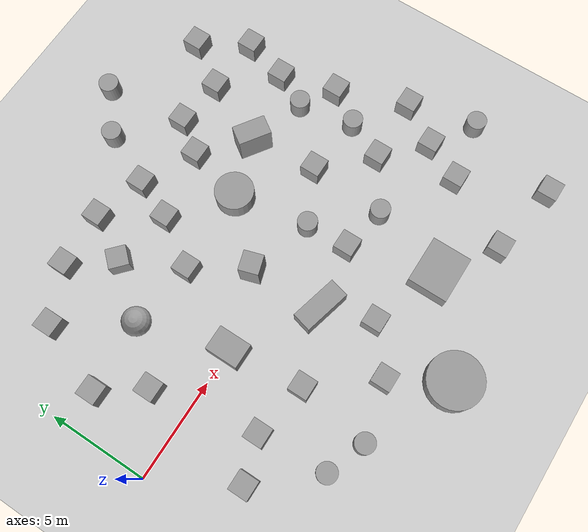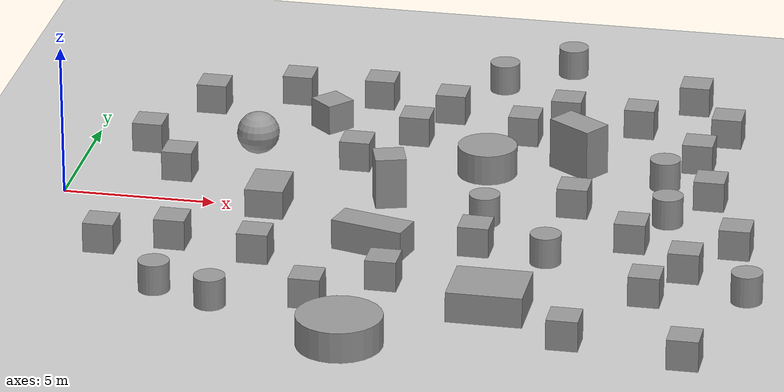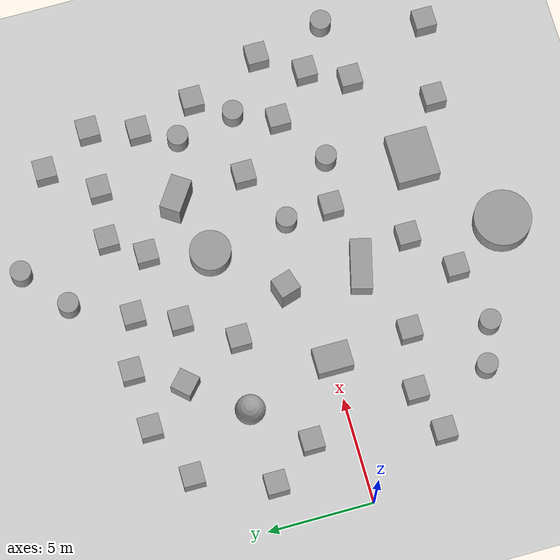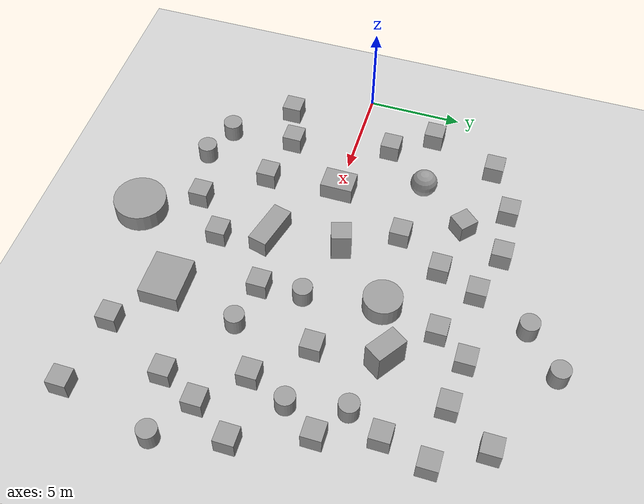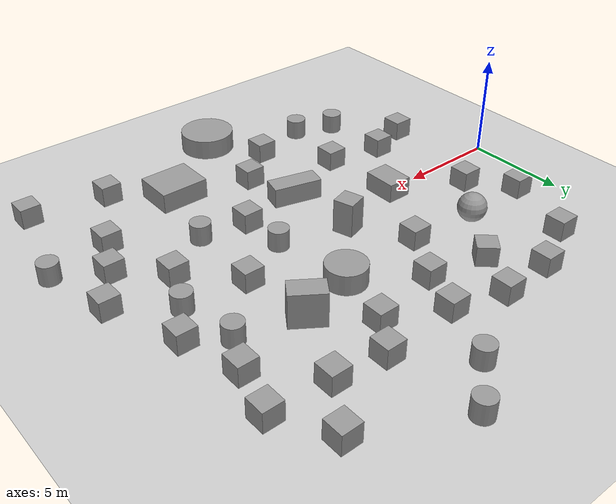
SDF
<sdf version="1.7">
 <world name="default">
  <light name="sun" type="directional">
   <pose>0 0 10 0 -0 0</pose>
   <diffuse>0.8 0.8 0.8 1</diffuse>
   <specular>0.2 0.2 0.2 1</specular>
   <attenuation>
    <range>1000</range>
    <constant>0.9</constant>
    <linear>0.01</linear>
    <quadratic>0.001</quadratic>
   </attenuation>
   <direction>-0.5 0.1 -0.9</direction>
   <spot><inner_angle>0</inner_angle><outer_angle>0</outer_angle><falloff>0</falloff></spot>
  </light>
  <model name="ground_plane">
   <static>1</static>
   <link name="link">
    <collision name="collision">
     <geometry><plane><normal>0 0 1</normal><size>100 100</size></plane></geometry>
     <surface><friction><ode><mu>100</mu><mu2>50</mu2></ode></friction></surface>
    </collision>
    <visual name="visual">
     <cast_shadows>0</cast_shadows>
     <geometry><plane><normal>0 0 1</normal><size>100 100</size></plane></geometry>
     <material>
      <script><uri>file://media/materials/scripts/gazebo.material</uri><name>Gazebo/Grey</name></script>
     </material>
    </visual>
   </link>
  </model>
  <gravity>0 0 -9.8</gravity>
  <magnetic_field>6e-06 2.3e-05 -4.2e-05</magnetic_field>
  <atmosphere type="adiabatic"/>
  <physics type="ode">
   <max_step_size>0.001</max_step_size>
   <real_time_factor>1</real_time_factor>
   <real_time_update_rate>1000</real_time_update_rate>
  </physics>
  <scene><ambient>0.4 0.4 0.4 1</ambient><background>0.7 0.7 0.7 1</background><shadows>1</shadows></scene>
  <spherical_coordinates>
   <surface_model>EARTH_WGS84</surface_model>
   <latitude_deg>0</latitude_deg>
   <longitude_deg>0</longitude_deg>
   <elevation>0</elevation>
   <heading_deg>0</heading_deg>
  </spherical_coordinates>
  <model name="unit_box">
   <pose>6.8234 -0.00563 0.4785 0 -0 0</pose>
   <link name="link">
    <inertial>
     <mass>1</mass>
     <inertia>
      <ixx>0.166667</ixx>
      <ixy>0</ixy>
      <ixz>0</ixz>
      <iyy>0.166667</iyy>
      <iyz>0</iyz>
      <izz>0.166667</izz>
     </inertia>
    </inertial>
    <collision name="collision"><geometry><box><size>1.25115 1.68193 0.956999</size></box></geometry></collision>
    <visual name="visual">
     <geometry><box><size>1.25115 1.68193 0.956999</size></box></geometry>
     <material>
      <script><name>Gazebo/Grey</name><uri>file://media/materials/scripts/gazebo.material</uri></script>
     </material>
    </visual>
   </link>
  </model>
  <model name="unit_sphere">
   <pose>5.52198 4.27097 0.70451 0 -0 0</pose>
   <link name="link">
    <inertial>
     <mass>1</mass>
     <inertia><ixx>0.1</ixx><ixy>0</ixy><ixz>0</ixz><iyy>0.1</iyy><iyz>0</iyz><izz>0.1</izz></inertia>
    </inertial>
    <collision name="collision"><geometry><sphere><radius>0.70451</radius></sphere></geometry></collision>
    <visual name="visual">
     <geometry><sphere><radius>0.70451</radius></sphere></geometry>
     <material>
      <script><name>Gazebo/Grey</name><uri>file://media/materials/scripts/gazebo.material</uri></script>
     </material>
    </visual>
   </link>
  </model>
  <model name="unit_box_0">
   <pose>2.24802 -3.96061 0.499995 1e-05 -0 0</pose>
   <link name="link">
    <inertial>
     <mass>1</mass>
     <inertia>
      <ixx>0.166667</ixx>
      <ixy>0</ixy>
      <ixz>0</ixz>
      <iyy>0.166667</iyy>
      <iyz>0</iyz>
      <izz>0.166667</izz>
     </inertia>
    </inertial>
    <collision name="collision"><geometry><box><size>1 1 1</size></box></geometry></collision>
    <visual name="visual">
     <geometry><box><size>1 1 1</size></box></geometry>
     <material>
      <script><name>Gazebo/Grey</name><uri>file://media/materials/scripts/gazebo.material</uri></script>
     </material>
    </visual>
   </link>
  </model>
  <model name="unit_box_0_clone">
   <pose>10.5432 1.18116 0.847215 0 -0 0.296647</pose>
   <link name="link">
    <inertial>
     <mass>1</mass>
     <inertia>
      <ixx>0.166667</ixx>
      <ixy>0</ixy>
      <ixz>0</ixz>
      <iyy>0.166667</iyy>
      <iyz>0</iyz>
      <izz>0.166667</izz>
     </inertia>
    </inertial>
    <collision name="collision"><geometry><box><size>1 1 1.69443</size></box></geometry></collision>
    <visual name="visual">
     <geometry><box><size>1 1 1.69443</size></box></geometry>
     <material>
      <script><name>Gazebo/Grey</name><uri>file://media/materials/scripts/gazebo.material</uri></script>
     </material>
    </visual>
   </link>
  </model>
  <model name="unit_box_0_clone_0">
   <pose>10.733 -2.50024 0.5 -0 -0 -0.251296</pose>
   <link name="link">
    <inertial>
     <mass>1</mass>
     <inertia>
      <ixx>0.166667</ixx>
      <ixy>0</ixy>
      <ixz>0</ixz>
      <iyy>0.166667</iyy>
      <iyz>0</iyz>
      <izz>0.166667</izz>
     </inertia>
    </inertial>
    <collision name="collision"><geometry><box><size>2.4261 1 1</size></box></geometry></collision>
    <visual name="visual">
     <geometry><box><size>2.4261 1 1</size></box></geometry>
     <material>
      <script><name>Gazebo/Grey</name><uri>file://media/materials/scripts/gazebo.material</uri></script>
     </material>
    </visual>
   </link>
  </model>
  <model name="unit_box_0_clone_1">
   <pose>7.20218 -3.79292 0.499995 0 1e-05 0</pose>
   <link name="link">
    <inertial>
     <mass>1</mass>
     <inertia>
      <ixx>0.166667</ixx>
      <ixy>0</ixy>
      <ixz>0</ixz>
      <iyy>0.166667</iyy>
      <iyz>0</iyz>
      <izz>0.166667</izz>
     </inertia>
    </inertial>
    <collision name="collision"><geometry><box><size>1 1 1</size></box></geometry></collision>
    <visual name="visual">
     <geometry><box><size>1 1 1</size></box></geometry>
     <material>
      <script><name>Gazebo/Grey</name><uri>file://media/materials/scripts/gazebo.material</uri></script>
     </material>
    </visual>
   </link>
  </model>
  <model name="unit_box_0_clone_2">
   <pose>10.4651 6.22586 0.499995 0 1e-05 0</pose>
   <link name="link">
    <inertial>
     <mass>1</mass>
     <inertia>
      <ixx>0.166667</ixx>
      <ixy>0</ixy>
      <ixz>0</ixz>
      <iyy>0.166667</iyy>
      <iyz>0</iyz>
      <izz>0.166667</izz>
     </inertia>
    </inertial>
    <collision name="collision"><geometry><box><size>1 1 1</size></box></geometry></collision>
    <visual name="visual">
     <geometry><box><size>1 1 1</size></box></geometry>
     <material>
      <script><name>Gazebo/Grey</name><uri>file://media/materials/scripts/gazebo.material</uri></script>
     </material>
    </visual>
   </link>
  </model>
  <model name="unit_cylinder">
   <pose>13.2396 4.04762 0.5 0 -0 0</pose>
   <link name="link">
    <inertial>
     <mass>1</mass>
     <inertia><ixx>0.145833</ixx><ixy>0</ixy><ixz>0</ixz><iyy>0.145833</iyy><iyz>0</iyz><izz>0.125</izz></inertia>
    </inertial>
    <collision name="collision">
     <geometry><cylinder><radius>0.97662</radius><length>1</length></cylinder></geometry>
    </collision>
    <visual name="visual">
     <geometry><cylinder><radius>0.97662</radius><length>1</length></cylinder></geometry>
     <material>
      <script><name>Gazebo/Grey</name><uri>file://media/materials/scripts/gazebo.material</uri></script>
     </material>
    </visual>
   </link>
  </model>
  <model name="unit_cylinder_clone">
   <pose>16.2787 -2.40365 0.499996 2e-06 -0 0</pose>
   <link name="link">
    <inertial>
     <mass>1</mass>
     <inertia><ixx>0.145833</ixx><ixy>0</ixy><ixz>0</ixz><iyy>0.145833</iyy><iyz>0</iyz><izz>0.125</izz></inertia>
    </inertial>
    <collision name="collision">
     <geometry><cylinder><radius>0.5</radius><length>1</length></cylinder></geometry>
    </collision>
    <visual name="visual">
     <geometry><cylinder><radius>0.5</radius><length>1</length></cylinder></geometry>
     <material>
      <script><name>Gazebo/Grey</name><uri>file://media/materials/scripts/gazebo.material</uri></script>
     </material>
    </visual>
   </link>
  </model>
  <model name="unit_cylinder_clone_0">
   <pose>19.6221 1.21871 0.499993 -3e-06 -1e-06 -0</pose>
   <link name="link">
    <inertial>
     <mass>1</mass>
     <inertia><ixx>0.145833</ixx><ixy>0</ixy><ixz>0</ixz><iyy>0.145833</iyy><iyz>0</iyz><izz>0.125</izz></inertia>
    </inertial>
    <collision name="collision">
     <geometry><cylinder><radius>0.5</radius><length>1</length></cylinder></geometry>
    </collision>
    <visual name="visual">
     <geometry><cylinder><radius>0.5</radius><length>1</length></cylinder></geometry>
     <material>
      <script><name>Gazebo/Grey</name><uri>file://media/materials/scripts/gazebo.material</uri></script>
     </material>
    </visual>
   </link>
  </model>
  <model name="unit_cylinder_clone_1">
   <pose>19.1111 4.04231 0.499994 -1e-06 0 0</pose>
   <link name="link">
    <inertial>
     <mass>1</mass>
     <inertia><ixx>0.145833</ixx><ixy>0</ixy><ixz>0</ixz><iyy>0.145833</iyy><iyz>0</iyz><izz>0.125</izz></inertia>
    </inertial>
    <collision name="collision">
     <geometry><cylinder><radius>0.5</radius><length>1</length></cylinder></geometry>
    </collision>
    <visual name="visual">
     <geometry><cylinder><radius>0.5</radius><length>1</length></cylinder></geometry>
     <material>
      <script><name>Gazebo/Grey</name><uri>file://media/materials/scripts/gazebo.material</uri></script>
     </material>
    </visual>
   </link>
  </model>
  <model name="unit_cylinder_clone_2">
   <pose>13.845 0.208693 0.499997 3e-06 1e-06 -0</pose>
   <link name="link">
    <inertial>
     <mass>1</mass>
     <inertia><ixx>0.145833</ixx><ixy>0</ixy><ixz>0</ixz><iyy>0.145833</iyy><iyz>0</iyz><izz>0.125</izz></inertia>
    </inertial>
    <collision name="collision">
     <geometry><cylinder><radius>0.5</radius><length>1</length></cylinder></geometry>
    </collision>
    <visual name="visual">
     <geometry><cylinder><radius>0.5</radius><length>1</length></cylinder></geometry>
     <material>
      <script><name>Gazebo/Grey</name><uri>file://media/materials/scripts/gazebo.material</uri></script>
     </material>
    </visual>
   </link>
  </model>
  <model name="unit_box_0_clone_1_clone">
   <pose>19.8164 -4.60226 0.499995 1e-05 -0 0</pose>
   <link name="link">
    <inertial>
     <mass>1</mass>
     <inertia>
      <ixx>0.166667</ixx>
      <ixy>0</ixy>
      <ixz>0</ixz>
      <iyy>0.166667</iyy>
      <iyz>0</iyz>
      <izz>0.166667</izz>
     </inertia>
    </inertial>
    <collision name="collision"><geometry><box><size>1 1 1</size></box></geometry></collision>
    <visual name="visual">
     <geometry><box><size>1 1 1</size></box></geometry>
     <material>
      <script><name>Gazebo/Grey</name><uri>file://media/materials/scripts/gazebo.material</uri></script>
     </material>
    </visual>
   </link>
  </model>
  <model name="unit_box_0_clone_1_clone_0">
   <pose>15.1843 -6.29647 0.499985 1.5e-05 -0 0</pose>
   <link name="link">
    <inertial>
     <mass>1</mass>
     <inertia>
      <ixx>0.166667</ixx>
      <ixy>0</ixy>
      <ixz>0</ixz>
      <iyy>0.166667</iyy>
      <iyz>0</iyz>
      <izz>0.166667</izz>
     </inertia>
    </inertial>
    <collision name="collision"><geometry><box><size>2.41036 2.01501 1</size></box></geometry></collision>
    <visual name="visual">
     <geometry><box><size>2.41036 2.01501 1</size></box></geometry>
     <material>
      <script><name>Gazebo/Grey</name><uri>file://media/materials/scripts/gazebo.material</uri></script>
     </material>
    </visual>
   </link>
  </model>
  <model name="unit_cylinder_clone_clone">
   <pose>4.6181 -6.72132 0.499994 -3e-06 -1e-06 -0</pose>
   <link name="link">
    <inertial>
     <mass>1</mass>
     <inertia><ixx>0.145833</ixx><ixy>0</ixy><ixz>0</ixz><iyy>0.145833</iyy><iyz>0</iyz><izz>0.125</izz></inertia>
    </inertial>
    <collision name="collision">
     <geometry><cylinder><radius>0.5</radius><length>1</length></cylinder></geometry>
    </collision>
    <visual name="visual">
     <geometry><cylinder><radius>0.5</radius><length>1</length></cylinder></geometry>
     <material>
      <script><name>Gazebo/Grey</name><uri>file://media/materials/scripts/gazebo.material</uri></script>
     </material>
    </visual>
   </link>
  </model>
  <model name="unit_cylinder_clone_clone_0">
   <pose>22.9035 -4.03068 0.499996 3e-06 1e-06 -0</pose>
   <link name="link">
    <inertial>
     <mass>1</mass>
     <inertia><ixx>0.145833</ixx><ixy>0</ixy><ixz>0</ixz><iyy>0.145833</iyy><iyz>0</iyz><izz>0.125</izz></inertia>
    </inertial>
    <collision name="collision">
     <geometry><cylinder><radius>0.5</radius><length>1</length></cylinder></geometry>
    </collision>
    <visual name="visual">
     <geometry><cylinder><radius>0.5</radius><length>1</length></cylinder></geometry>
     <material>
      <script><name>Gazebo/Grey</name><uri>file://media/materials/scripts/gazebo.material</uri></script>
     </material>
    </visual>
   </link>
  </model>
  <model name="unit_box_0_clone_1_clone_clone">
   <pose>18.7686 -0.770254 0.499995 1e-05 -0 0</pose>
   <link name="link">
    <inertial>
     <mass>1</mass>
     <inertia>
      <ixx>0.166667</ixx>
      <ixy>0</ixy>
      <ixz>0</ixz>
      <iyy>0.166667</iyy>
      <iyz>0</iyz>
      <izz>0.166667</izz>
     </inertia>
    </inertial>
    <collision name="collision"><geometry><box><size>1 1 1</size></box></geometry></collision>
    <visual name="visual">
     <geometry><box><size>1 1 1</size></box></geometry>
     <material>
      <script><name>Gazebo/Grey</name><uri>file://media/materials/scripts/gazebo.material</uri></script>
     </material>
    </visual>
   </link>
  </model>
  <model name="unit_box_0_clone_1_clone_clone_0">
   <pose>16.5328 1.53663 0.499995 0 1e-05 0</pose>
   <link name="link">
    <inertial>
     <mass>1</mass>
     <inertia>
      <ixx>0.166667</ixx>
      <ixy>0</ixy>
      <ixz>0</ixz>
      <iyy>0.166667</iyy>
      <iyz>0</iyz>
      <izz>0.166667</izz>
     </inertia>
    </inertial>
    <collision name="collision"><geometry><box><size>1 1 1</size></box></geometry></collision>
    <visual name="visual">
     <geometry><box><size>1 1 1</size></box></geometry>
     <material>
      <script><name>Gazebo/Grey</name><uri>file://media/materials/scripts/gazebo.material</uri></script>
     </material>
    </visual>
   </link>
  </model>
  <model name="unit_box_0_clone_1_clone_clone_1">
   <pose>9.5058 -6.72517 0.499995 1e-05 -0 0</pose>
   <link name="link">
    <inertial>
     <mass>1</mass>
     <inertia>
      <ixx>0.166667</ixx>
      <ixy>0</ixy>
      <ixz>0</ixz>
      <iyy>0.166667</iyy>
      <iyz>0</iyz>
      <izz>0.166667</izz>
     </inertia>
    </inertial>
    <collision name="collision"><geometry><box><size>1 1 1</size></box></geometry></collision>
    <visual name="visual">
     <geometry><box><size>1 1 1</size></box></geometry>
     <material>
      <script><name>Gazebo/Grey</name><uri>file://media/materials/scripts/gazebo.material</uri></script>
     </material>
    </visual>
   </link>
  </model>
  <model name="unit_box_0_clone_clone">
   <pose>16.119 4.90667 0.84721 -6e-06 -0 0.970624</pose>
   <link name="link">
    <inertial>
     <mass>1</mass>
     <inertia>
      <ixx>0.166667</ixx>
      <ixy>0</ixy>
      <ixz>0</ixz>
      <iyy>0.166667</iyy>
      <iyz>0</iyz>
      <izz>0.166667</izz>
     </inertia>
    </inertial>
    <collision name="collision"><geometry><box><size>1 1.66664 1.69443</size></box></geometry></collision>
    <visual name="visual">
     <geometry><box><size>1 1.66664 1.69443</size></box></geometry>
     <material>
      <script><name>Gazebo/Grey</name><uri>file://media/materials/scripts/gazebo.material</uri></script>
     </material>
    </visual>
   </link>
  </model>
  <model name="unit_box_0_clone_3">
   <pose>8.93229 3.86811 0.499995 1e-05 -0 0</pose>
   <link name="link">
    <inertial>
     <mass>1</mass>
     <inertia>
      <ixx>0.166667</ixx>
      <ixy>0</ixy>
      <ixz>0</ixz>
      <iyy>0.166667</iyy>
      <iyz>0</iyz>
      <izz>0.166667</izz>
     </inertia>
    </inertial>
    <collision name="collision"><geometry><box><size>1 1 1</size></box></geometry></collision>
    <visual name="visual">
     <geometry><box><size>1 1 1</size></box></geometry>
     <material>
      <script><name>Gazebo/Grey</name><uri>file://media/materials/scripts/gazebo.material</uri></script>
     </material>
    </visual>
   </link>
  </model>
  <model name="unit_box_0_clone_4">
   <pose>13.954 -1.97414 0.499995 0 -1e-05 0</pose>
   <link name="link">
    <inertial>
     <mass>1</mass>
     <inertia>
      <ixx>0.166667</ixx>
      <ixy>0</ixy>
      <ixz>0</ixz>
      <iyy>0.166667</iyy>
      <iyz>0</iyz>
      <izz>0.166667</izz>
     </inertia>
    </inertial>
    <collision name="collision"><geometry><box><size>1 1 1</size></box></geometry></collision>
    <visual name="visual">
     <geometry><box><size>1 1 1</size></box></geometry>
     <material>
      <script><name>Gazebo/Grey</name><uri>file://media/materials/scripts/gazebo.material</uri></script>
     </material>
    </visual>
   </link>
  </model>
  <model name="unit_box_0_clone_5">
   <pose>7.48948 6.79558 0.5 0 -0 0.833903</pose>
   <link name="link">
    <inertial>
     <mass>1</mass>
     <inertia>
      <ixx>0.166667</ixx>
      <ixy>0</ixy>
      <ixz>0</ixz>
      <iyy>0.166667</iyy>
      <iyz>0</iyz>
      <izz>0.166667</izz>
     </inertia>
    </inertial>
    <collision name="collision"><geometry><box><size>1 1 1</size></box></geometry></collision>
    <visual name="visual">
     <geometry><box><size>1 1 1</size></box></geometry>
     <material>
      <script><name>Gazebo/Grey</name><uri>file://media/materials/scripts/gazebo.material</uri></script>
     </material>
    </visual>
   </link>
  </model>
  <model name="unit_box_0_clone_1_clone_clone_0_clone">
   <pose>19.9785 5.74794 0.499995 0 1e-05 0</pose>
   <link name="link">
    <inertial>
     <mass>1</mass>
     <inertia>
      <ixx>0.166667</ixx>
      <ixy>0</ixy>
      <ixz>0</ixz>
      <iyy>0.166667</iyy>
      <iyz>0</iyz>
      <izz>0.166667</izz>
     </inertia>
    </inertial>
    <collision name="collision"><geometry><box><size>1 1 1</size></box></geometry></collision>
    <visual name="visual">
     <geometry><box><size>1 1 1</size></box></geometry>
     <material>
      <script><name>Gazebo/Grey</name><uri>file://media/materials/scripts/gazebo.material</uri></script>
     </material>
    </visual>
   </link>
  </model>
  <model name="unit_box_0_clone_1_clone_clone_0_clone_0">
   <pose>20.7672 2.9183 0.499995 -1e-05 -0 -0</pose>
   <link name="link">
    <inertial>
     <mass>1</mass>
     <inertia>
      <ixx>0.166667</ixx>
      <ixy>0</ixy>
      <ixz>0</ixz>
      <iyy>0.166667</iyy>
      <iyz>0</iyz>
      <izz>0.166667</izz>
     </inertia>
    </inertial>
    <collision name="collision"><geometry><box><size>1 1 1</size></box></geometry></collision>
    <visual name="visual">
     <geometry><box><size>1 1 1</size></box></geometry>
     <material>
      <script><name>Gazebo/Grey</name><uri>file://media/materials/scripts/gazebo.material</uri></script>
     </material>
    </visual>
   </link>
  </model>
  <model name="unit_box_0_clone_1_clone_clone_0_clone_1">
   <pose>22.0917 -0.627986 0.499995 0 1e-05 0</pose>
   <link name="link">
    <inertial>
     <mass>1</mass>
     <inertia>
      <ixx>0.166667</ixx>
      <ixy>0</ixy>
      <ixz>0</ixz>
      <iyy>0.166667</iyy>
      <iyz>0</iyz>
      <izz>0.166667</izz>
     </inertia>
    </inertial>
    <collision name="collision"><geometry><box><size>1 1 1</size></box></geometry></collision>
    <visual name="visual">
     <geometry><box><size>1 1 1</size></box></geometry>
     <material>
      <script><name>Gazebo/Grey</name><uri>file://media/materials/scripts/gazebo.material</uri></script>
     </material>
    </visual>
   </link>
  </model>
  <model name="unit_box_0_clone_1_clone_clone_0_clone_2">
   <pose>20.7682 -2.64973 0.499995 0 -1e-05 0</pose>
   <link name="link">
    <inertial>
     <mass>1</mass>
     <inertia>
      <ixx>0.166667</ixx>
      <ixy>0</ixy>
      <ixz>0</ixz>
      <iyy>0.166667</iyy>
      <iyz>0</iyz>
      <izz>0.166667</izz>
     </inertia>
    </inertial>
    <collision name="collision"><geometry><box><size>1 1 1</size></box></geometry></collision>
    <visual name="visual">
     <geometry><box><size>1 1 1</size></box></geometry>
     <material>
      <script><name>Gazebo/Grey</name><uri>file://media/materials/scripts/gazebo.material</uri></script>
     </material>
    </visual>
   </link>
  </model>
  <model name="unit_box_0_clone_1_clone_clone_0_clone_3">
   <pose>13.9987 6.92007 0.499995 -1e-05 -0 -0</pose>
   <link name="link">
    <inertial>
     <mass>1</mass>
     <inertia>
      <ixx>0.166667</ixx>
      <ixy>0</ixy>
      <ixz>0</ixz>
      <iyy>0.166667</iyy>
      <iyz>0</iyz>
      <izz>0.166667</izz>
     </inertia>
    </inertial>
    <collision name="collision"><geometry><box><size>1 1 1</size></box></geometry></collision>
    <visual name="visual">
     <geometry><box><size>1 1 1</size></box></geometry>
     <material>
      <script><name>Gazebo/Grey</name><uri>file://media/materials/scripts/gazebo.material</uri></script>
     </material>
    </visual>
   </link>
  </model>
  <model name="unit_box_0_clone_1_clone_clone_0_clone_4">
   <pose>11.5756 -4.99068 0.499995 0 -1e-05 0</pose>
   <link name="link">
    <inertial>
     <mass>1</mass>
     <inertia>
      <ixx>0.166667</ixx>
      <ixy>0</ixy>
      <ixz>0</ixz>
      <iyy>0.166667</iyy>
      <iyz>0</iyz>
      <izz>0.166667</izz>
     </inertia>
    </inertial>
    <collision name="collision"><geometry><box><size>1 1 1</size></box></geometry></collision>
    <visual name="visual">
     <geometry><box><size>1 1 1</size></box></geometry>
     <material>
      <script><name>Gazebo/Grey</name><uri>file://media/materials/scripts/gazebo.material</uri></script>
     </material>
    </visual>
   </link>
  </model>
  <model name="unit_box_0_clone_1_clone_clone_0_clone_5">
   <pose>3.40258 1.96776 0.499995 0 -1e-05 0</pose>
   <link name="link">
    <inertial>
     <mass>1</mass>
     <inertia>
      <ixx>0.166667</ixx>
      <ixy>0</ixy>
      <ixz>0</ixz>
      <iyy>0.166667</iyy>
      <iyz>0</iyz>
      <izz>0.166667</izz>
     </inertia>
    </inertial>
    <collision name="collision"><geometry><box><size>1 1 1</size></box></geometry></collision>
    <visual name="visual">
     <geometry><box><size>1 1 1</size></box></geometry>
     <material>
      <script><name>Gazebo/Grey</name><uri>file://media/materials/scripts/gazebo.material</uri></script>
     </material>
    </visual>
   </link>
  </model>
  <model name="unit_box_0_clone_1_clone_clone_0_clone_6">
   <pose>1.91691 4.04861 0.499995 0 -1e-05 0</pose>
   <link name="link">
    <inertial>
     <mass>1</mass>
     <inertia>
      <ixx>0.166667</ixx>
      <ixy>0</ixy>
      <ixz>0</ixz>
      <iyy>0.166667</iyy>
      <iyz>0</iyz>
      <izz>0.166667</izz>
     </inertia>
    </inertial>
    <collision name="collision"><geometry><box><size>1 1 1</size></box></geometry></collision>
    <visual name="visual">
     <geometry><box><size>1 1 1</size></box></geometry>
     <material>
      <script><name>Gazebo/Grey</name><uri>file://media/materials/scripts/gazebo.material</uri></script>
     </material>
    </visual>
   </link>
  </model>
  <model name="unit_box_0_clone_1_clone_clone_0_clone_7">
   <pose>4.39288 -3.25585 0.499995 0 1e-05 0</pose>
   <link name="link">
    <inertial>
     <mass>1</mass>
     <inertia>
      <ixx>0.166667</ixx>
      <ixy>0</ixy>
      <ixz>0</ixz>
      <iyy>0.166667</iyy>
      <iyz>0</iyz>
      <izz>0.166667</izz>
     </inertia>
    </inertial>
    <collision name="collision"><geometry><box><size>1 1 1</size></box></geometry></collision>
    <visual name="visual">
     <geometry><box><size>1 1 1</size></box></geometry>
     <material>
      <script><name>Gazebo/Grey</name><uri>file://media/materials/scripts/gazebo.material</uri></script>
     </material>
    </visual>
   </link>
  </model>
  <model name="unit_box_0_clone_1_clone_clone_0_clone_8">
   <pose>3.28023 7.60288 0.499995 0 1e-05 0</pose>
   <link name="link">
    <inertial>
     <mass>1</mass>
     <inertia>
      <ixx>0.166667</ixx>
      <ixy>0</ixy>
      <ixz>0</ixz>
      <iyy>0.166667</iyy>
      <iyz>0</iyz>
      <izz>0.166667</izz>
     </inertia>
    </inertial>
    <collision name="collision"><geometry><box><size>1 1 1</size></box></geometry></collision>
    <visual name="visual">
     <geometry><box><size>1 1 1</size></box></geometry>
     <material>
      <script><name>Gazebo/Grey</name><uri>file://media/materials/scripts/gazebo.material</uri></script>
     </material>
    </visual>
   </link>
  </model>
  <model name="unit_box_0_clone_1_clone_clone_0_clone_9">
   <pose>5.95406 8.85784 0.499995 0 -1e-05 0</pose>
   <link name="link">
    <inertial>
     <mass>1</mass>
     <inertia>
      <ixx>0.166667</ixx>
      <ixy>0</ixy>
      <ixz>0</ixz>
      <iyy>0.166667</iyy>
      <iyz>0</iyz>
      <izz>0.166667</izz>
     </inertia>
    </inertial>
    <collision name="collision"><geometry><box><size>1 1 1</size></box></geometry></collision>
    <visual name="visual">
     <geometry><box><size>1 1 1</size></box></geometry>
     <material>
      <script><name>Gazebo/Grey</name><uri>file://media/materials/scripts/gazebo.material</uri></script>
     </material>
    </visual>
   </link>
  </model>
  <model name="unit_box_0_clone_1_clone_clone_0_clone_10">
   <pose>8.74465 9.00896 0.499995 0 -1e-05 0</pose>
   <link name="link">
    <inertial>
     <mass>1</mass>
     <inertia>
      <ixx>0.166667</ixx>
      <ixy>0</ixy>
      <ixz>0</ixz>
      <iyy>0.166667</iyy>
      <iyz>0</iyz>
      <izz>0.166667</izz>
     </inertia>
    </inertial>
    <collision name="collision"><geometry><box><size>1 1 1</size></box></geometry></collision>
    <visual name="visual">
     <geometry><box><size>1 1 1</size></box></geometry>
     <material>
      <script><name>Gazebo/Grey</name><uri>file://media/materials/scripts/gazebo.material</uri></script>
     </material>
    </visual>
   </link>
  </model>
  <model name="unit_box_0_clone_1_clone_clone_0_clone_11">
   <pose>11.3053 8.26054 0.499995 0 1e-05 0</pose>
   <link name="link">
    <inertial>
     <mass>1</mass>
     <inertia>
      <ixx>0.166667</ixx>
      <ixy>0</ixy>
      <ixz>0</ixz>
      <iyy>0.166667</iyy>
      <iyz>0</iyz>
      <izz>0.166667</izz>
     </inertia>
    </inertial>
    <collision name="collision"><geometry><box><size>1 1 1</size></box></geometry></collision>
    <visual name="visual">
     <geometry><box><size>1 1 1</size></box></geometry>
     <material>
      <script><name>Gazebo/Grey</name><uri>file://media/materials/scripts/gazebo.material</uri></script>
     </material>
    </visual>
   </link>
  </model>
  <model name="unit_box_0_clone_1_clone_clone_0_clone_12">
   <pose>17.8483 -8.13361 0.499995 0 -1e-05 0</pose>
   <link name="link">
    <inertial>
     <mass>1</mass>
     <inertia>
      <ixx>0.166667</ixx>
      <ixy>0</ixy>
      <ixz>0</ixz>
      <iyy>0.166667</iyy>
      <iyz>0</iyz>
      <izz>0.166667</izz>
     </inertia>
    </inertial>
    <collision name="collision"><geometry><box><size>1 1 1</size></box></geometry></collision>
    <visual name="visual">
     <geometry><box><size>1 1 1</size></box></geometry>
     <material>
      <script><name>Gazebo/Grey</name><uri>file://media/materials/scripts/gazebo.material</uri></script>
     </material>
    </visual>
   </link>
  </model>
  <model name="unit_box_0_clone_1_clone_clone_0_clone_13">
   <pose>21.6634 -8.80502 0.499995 0 1e-05 0</pose>
   <link name="link">
    <inertial>
     <mass>1</mass>
     <inertia>
      <ixx>0.166667</ixx>
      <ixy>0</ixy>
      <ixz>0</ixz>
      <iyy>0.166667</iyy>
      <iyz>0</iyz>
      <izz>0.166667</izz>
     </inertia>
    </inertial>
    <collision name="collision"><geometry><box><size>1 1 1</size></box></geometry></collision>
    <visual name="visual">
     <geometry><box><size>1 1 1</size></box></geometry>
     <material>
      <script><name>Gazebo/Grey</name><uri>file://media/materials/scripts/gazebo.material</uri></script>
     </material>
    </visual>
   </link>
  </model>
  <model name="unit_box_0_clone_1_clone_clone_0_clone_14">
   <pose>19.1925 10.4678 0.499995 -1e-05 -0 -0</pose>
   <link name="link">
    <inertial>
     <mass>1</mass>
     <inertia>
      <ixx>0.166667</ixx>
      <ixy>0</ixy>
      <ixz>0</ixz>
      <iyy>0.166667</iyy>
      <iyz>0</iyz>
      <izz>0.166667</izz>
     </inertia>
    </inertial>
    <collision name="collision"><geometry><box><size>1 1 1</size></box></geometry></collision>
    <visual name="visual">
     <geometry><box><size>1 1 1</size></box></geometry>
     <material>
      <script><name>Gazebo/Grey</name><uri>file://media/materials/scripts/gazebo.material</uri></script>
     </material>
    </visual>
   </link>
  </model>
  <model name="unit_box_0_clone_1_clone_clone_0_clone_15">
   <pose>15.1665 8.51271 0.499995 0 1e-05 0</pose>
   <link name="link">
    <inertial>
     <mass>1</mass>
     <inertia>
      <ixx>0.166667</ixx>
      <ixy>0</ixy>
      <ixz>0</ixz>
      <iyy>0.166667</iyy>
      <iyz>0</iyz>
      <izz>0.166667</izz>
     </inertia>
    </inertial>
    <collision name="collision"><geometry><box><size>1 1 1</size></box></geometry></collision>
    <visual name="visual">
     <geometry><box><size>1 1 1</size></box></geometry>
     <material>
      <script><name>Gazebo/Grey</name><uri>file://media/materials/scripts/gazebo.material</uri></script>
     </material>
    </visual>
   </link>
  </model>
  <model name="unit_box_0_clone_1_clone_clone_0_clone_16">
   <pose>17.6613 8.24237 0.499995 0 -1e-05 0</pose>
   <link name="link">
    <inertial>
     <mass>1</mass>
     <inertia>
      <ixx>0.166667</ixx>
      <ixy>0</ixy>
      <ixz>0</ixz>
      <iyy>0.166667</iyy>
      <iyz>0</iyz>
      <izz>0.166667</izz>
     </inertia>
    </inertial>
    <collision name="collision"><geometry><box><size>1 1 1</size></box></geometry></collision>
    <visual name="visual">
     <geometry><box><size>1 1 1</size></box></geometry>
     <material>
      <script><name>Gazebo/Grey</name><uri>file://media/materials/scripts/gazebo.material</uri></script>
     </material>
    </visual>
   </link>
  </model>
  <model name="unit_box_0_clone_1_clone_clone_0_clone_17">
   <pose>20.6142 8.02761 0.499995 0 1e-05 0</pose>
   <link name="link">
    <inertial>
     <mass>1</mass>
     <inertia>
      <ixx>0.166667</ixx>
      <ixy>0</ixy>
      <ixz>0</ixz>
      <iyy>0.166667</iyy>
      <iyz>0</iyz>
      <izz>0.166667</izz>
     </inertia>
    </inertial>
    <collision name="collision"><geometry><box><size>1 1 1</size></box></geometry></collision>
    <visual name="visual">
     <geometry><box><size>1 1 1</size></box></geometry>
     <material>
      <script><name>Gazebo/Grey</name><uri>file://media/materials/scripts/gazebo.material</uri></script>
     </material>
    </visual>
   </link>
  </model>
  <model name="unit_cylinder_clone_clone_clone">
   <pose>6.57343 -7.46268 0.499993 -3e-06 -1e-06 -0</pose>
   <link name="link">
    <inertial>
     <mass>1</mass>
     <inertia><ixx>0.145833</ixx><ixy>0</ixy><ixz>0</ixz><iyy>0.145833</iyy><iyz>0</iyz><izz>0.125</izz></inertia>
    </inertial>
    <collision name="collision">
     <geometry><cylinder><radius>0.5</radius><length>1</length></cylinder></geometry>
    </collision>
    <visual name="visual">
     <geometry><cylinder><radius>0.5</radius><length>1</length></cylinder></geometry>
     <material>
      <script><name>Gazebo/Grey</name><uri>file://media/materials/scripts/gazebo.material</uri></script>
     </material>
    </visual>
   </link>
  </model>
  <model name="unit_cylinder_clone_clone_clone_0">
   <pose>11.0975 -9.45531 0.499989 7e-06 7e-06 -9.6e-05</pose>
   <link name="link">
    <inertial>
     <mass>1</mass>
     <inertia><ixx>0.145833</ixx><ixy>0</ixy><ixz>0</ixz><iyy>0.145833</iyy><iyz>0</iyz><izz>0.125</izz></inertia>
    </inertial>
    <collision name="collision">
     <geometry><cylinder><radius>1.36235</radius><length>1</length></cylinder></geometry>
    </collision>
    <visual name="visual">
     <geometry><cylinder><radius>1.36235</radius><length>1</length></cylinder></geometry>
     <material>
      <script><name>Gazebo/Grey</name><uri>file://media/materials/scripts/gazebo.material</uri></script>
     </material>
    </visual>
   </link>
  </model>
  <model name="unit_cylinder_clone_clone_clone_1">
   <pose>12.5788 10.9982 0.499994 -3e-06 -1e-06 -0</pose>
   <link name="link">
    <inertial>
     <mass>1</mass>
     <inertia><ixx>0.145833</ixx><ixy>0</ixy><ixz>0</ixz><iyy>0.145833</iyy><iyz>0</iyz><izz>0.125</izz></inertia>
    </inertial>
    <collision name="collision">
     <geometry><cylinder><radius>0.5</radius><length>1</length></cylinder></geometry>
    </collision>
    <visual name="visual">
     <geometry><cylinder><radius>0.5</radius><length>1</length></cylinder></geometry>
     <material>
      <script><name>Gazebo/Grey</name><uri>file://media/materials/scripts/gazebo.material</uri></script>
     </material>
    </visual>
   </link>
  </model>
  <model name="unit_cylinder_clone_clone_clone_2">
   <pose>14.6392 12.7411 0.499996 3e-06 1e-06 -0</pose>
   <link name="link">
    <inertial>
     <mass>1</mass>
     <inertia><ixx>0.145833</ixx><ixy>0</ixy><ixz>0</ixz><iyy>0.145833</iyy><iyz>0</iyz><izz>0.125</izz></inertia>
    </inertial>
    <collision name="collision">
     <geometry><cylinder><radius>0.5</radius><length>1</length></cylinder></geometry>
    </collision>
    <visual name="visual">
     <geometry><cylinder><radius>0.5</radius><length>1</length></cylinder></geometry>
     <material>
      <script><name>Gazebo/Grey</name><uri>file://media/materials/scripts/gazebo.material</uri></script>
     </material>
    </visual>
   </link>
  </model>
 </world>
</sdf>
